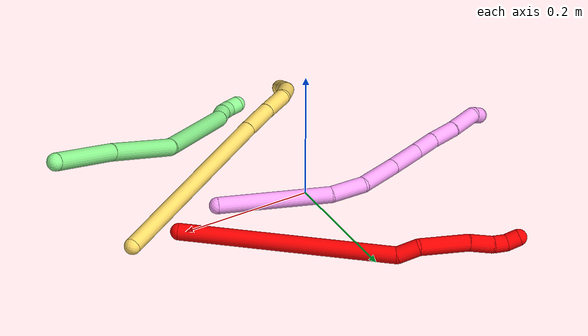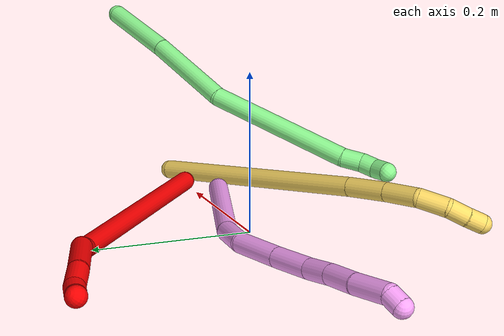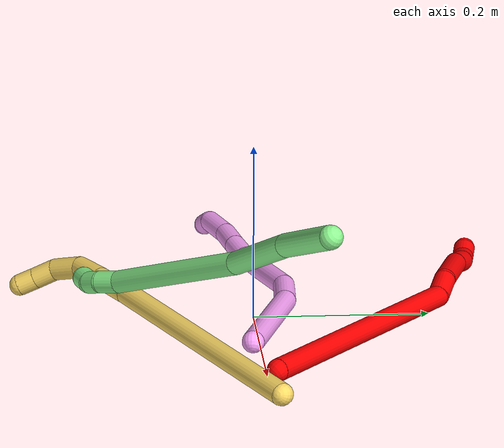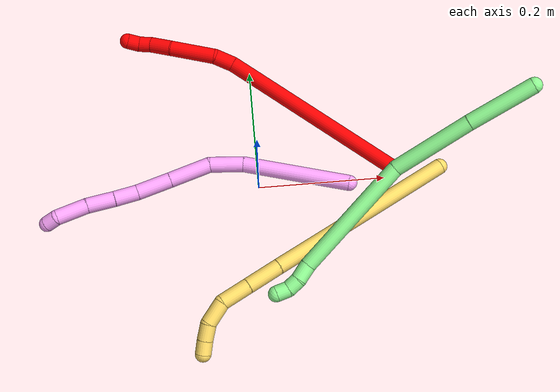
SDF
<sdf version="1.7">
 <world name="default">
  <model name="2">
   <static>0</static>
   <link name="2">
    <collision name="collision-cylinder-e_1_1_4">
     <pose>-0.067839 0.065614 0.127419 -0.47553 -0.442089 0.108812</pose>
     <geometry><cylinder><radius>0.0125</radius><length>0.317131</length></cylinder></geometry>
     <surface>
      <friction><ode><mu>1.16</mu><mu2>1.16</mu2><slip1>0</slip1><slip2>0</slip2></ode></friction>
      <contact><ode><kp>1e+06</kp><kd>1</kd><max_vel>0</max_vel><min_depth>0.001</min_depth></ode></contact>
     </surface>
    </collision>
    <visual name="visual-cylinder-e_1_1_4">
     <pose>-0.067839 0.065614 0.127419 -0.47553 -0.442089 0.108812</pose>
     <geometry><cylinder><radius>0.0125</radius><length>0.317131</length></cylinder></geometry>
     <material><ambient>1 0 0 1</ambient></material>
    </visual>
    <collision name="collision-cylinder-e_2_4_5">
     <pose>-0.145838 0.131113 0.267655 0.008903 -0.670307 -0.003101</pose>
     <geometry><cylinder><radius>0.0125</radius><length>0.032711</length></cylinder></geometry>
     <surface>
      <friction><ode><mu>1.16</mu><mu2>1.16</mu2><slip1>0</slip1><slip2>0</slip2></ode></friction>
      <contact><ode><kp>1e+06</kp><kd>1</kd><max_vel>0</max_vel><min_depth>0.001</min_depth></ode></contact>
     </surface>
    </collision>
    <visual name="visual-cylinder-e_2_4_5">
     <pose>-0.145838 0.131113 0.267655 0.008903 -0.670307 -0.003101</pose>
     <geometry><cylinder><radius>0.0125</radius><length>0.032711</length></cylinder></geometry>
     <material><ambient>1 0 0 1</ambient></material>
    </visual>
    <collision name="collision-cylinder-e_3_5_6">
     <pose>-0.18323 0.142301 0.302328 -0.477218 -0.836011 0.215253</pose>
     <geometry><cylinder><radius>0.0125</radius><length>0.073403</length></cylinder></geometry>
     <surface>
      <friction><ode><mu>1.16</mu><mu2>1.16</mu2><slip1>0</slip1><slip2>0</slip2></ode></friction>
      <contact><ode><kp>1e+06</kp><kd>1</kd><max_vel>0</max_vel><min_depth>0.001</min_depth></ode></contact>
     </surface>
    </collision>
    <visual name="visual-cylinder-e_3_5_6">
     <pose>-0.18323 0.142301 0.302328 -0.477218 -0.836011 0.215253</pose>
     <geometry><cylinder><radius>0.0125</radius><length>0.073403</length></cylinder></geometry>
     <material><ambient>1 0 0 1</ambient></material>
    </visual>
    <collision name="collision-cylinder-e_4_6_7">
     <pose>-0.222902 0.161967 0.333886 -0.711547 -0.770776 0.299232</pose>
     <geometry><cylinder><radius>0.0125</radius><length>0.035714</length></cylinder></geometry>
     <surface>
      <friction><ode><mu>1.16</mu><mu2>1.16</mu2><slip1>0</slip1><slip2>0</slip2></ode></friction>
      <contact><ode><kp>1e+06</kp><kd>1</kd><max_vel>0</max_vel><min_depth>0.001</min_depth></ode></contact>
     </surface>
    </collision>
    <visual name="visual-cylinder-e_4_6_7">
     <pose>-0.222902 0.161967 0.333886 -0.711547 -0.770776 0.299232</pose>
     <geometry><cylinder><radius>0.0125</radius><length>0.035714</length></cylinder></geometry>
     <material><ambient>1 0 0 1</ambient></material>
    </visual>
    <collision name="collision-cylinder-e_5_7_8">
     <pose>-0.243911 0.173399 0.348756 -0.535611 -0.959151 0.283498</pose>
     <geometry><cylinder><radius>0.0125</radius><length>0.020931</length></cylinder></geometry>
     <surface>
      <friction><ode><mu>1.16</mu><mu2>1.16</mu2><slip1>0</slip1><slip2>0</slip2></ode></friction>
      <contact><ode><kp>1e+06</kp><kd>1</kd><max_vel>0</max_vel><min_depth>0.001</min_depth></ode></contact>
     </surface>
    </collision>
    <visual name="visual-cylinder-e_5_7_8">
     <pose>-0.243911 0.173399 0.348756 -0.535611 -0.959151 0.283498</pose>
     <geometry><cylinder><radius>0.0125</radius><length>0.020931</length></cylinder></geometry>
     <material><ambient>1 0 0 1</ambient></material>
    </visual>
    <collision name="collision-cylinder-e_6_8_2">
     <pose>-0.259849 0.176351 0.360763 0.016842 -0.822651 -0.007347</pose>
     <geometry><cylinder><radius>0.0125</radius><length>0.020111</length></cylinder></geometry>
     <surface>
      <friction><ode><mu>1.16</mu><mu2>1.16</mu2><slip1>0</slip1><slip2>0</slip2></ode></friction>
      <contact><ode><kp>1e+06</kp><kd>1</kd><max_vel>0</max_vel><min_depth>0.001</min_depth></ode></contact>
     </surface>
    </collision>
    <visual name="visual-cylinder-e_6_8_2">
     <pose>-0.259849 0.176351 0.360763 0.016842 -0.822651 -0.007347</pose>
     <geometry><cylinder><radius>0.0125</radius><length>0.020111</length></cylinder></geometry>
     <material><ambient>1 0 0 1</ambient></material>
    </visual>
    <collision name="collision-sphere-2">
     <pose>-0.267219 0.176236 0.367603 0 -0 0</pose>
     <geometry><sphere><radius>0.0125</radius></sphere></geometry>
     <surface>
      <friction><ode><mu>1.16</mu><mu2>1.16</mu2><slip1>0</slip1><slip2>0</slip2></ode></friction>
      <contact><ode><kp>1e+06</kp><kd>1</kd><max_vel>0</max_vel><min_depth>0.001</min_depth></ode></contact>
     </surface>
    </collision>
    <visual name="visual-sphere-2">
     <pose>-0.267219 0.176236 0.367603 0 -0 0</pose>
     <geometry><sphere><radius>0.0125</radius></sphere></geometry>
     <material><ambient>1 0 0 1</ambient></material>
    </visual>
    <collision name="collision-sphere-4">
     <pose>-0.135678 0.131227 0.254839 0 -0 0</pose>
     <geometry><sphere><radius>0.0125</radius></sphere></geometry>
     <surface>
      <friction><ode><mu>1.16</mu><mu2>1.16</mu2><slip1>0</slip1><slip2>0</slip2></ode></friction>
      <contact><ode><kp>1e+06</kp><kd>1</kd><max_vel>0</max_vel><min_depth>0.001</min_depth></ode></contact>
     </surface>
    </collision>
    <visual name="visual-sphere-4">
     <pose>-0.135678 0.131227 0.254839 0 -0 0</pose>
     <geometry><sphere><radius>0.0125</radius></sphere></geometry>
     <material><ambient>1 0 0 1</ambient></material>
    </visual>
    <collision name="collision-sphere-1">
     <geometry><sphere><radius>0.0125</radius></sphere></geometry>
     <surface>
      <friction><ode><mu>1.16</mu><mu2>1.16</mu2><slip1>0</slip1><slip2>0</slip2></ode></friction>
      <contact><ode><kp>1e+06</kp><kd>1</kd><max_vel>0</max_vel><min_depth>0.001</min_depth></ode></contact>
     </surface>
    </collision>
    <visual name="visual-sphere-1">
     <geometry><sphere><radius>0.0125</radius></sphere></geometry>
     <material><ambient>1 0 0 1</ambient></material>
    </visual>
    <collision name="collision-sphere-8">
     <pose>-0.252479 0.176466 0.353924 0 -0 0</pose>
     <geometry><sphere><radius>0.0125</radius></sphere></geometry>
     <surface>
      <friction><ode><mu>1.16</mu><mu2>1.16</mu2><slip1>0</slip1><slip2>0</slip2></ode></friction>
      <contact><ode><kp>1e+06</kp><kd>1</kd><max_vel>0</max_vel><min_depth>0.001</min_depth></ode></contact>
     </surface>
    </collision>
    <visual name="visual-sphere-8">
     <pose>-0.252479 0.176466 0.353924 0 -0 0</pose>
     <geometry><sphere><radius>0.0125</radius></sphere></geometry>
     <material><ambient>1 0 0 1</ambient></material>
    </visual>
    <collision name="collision-sphere-5">
     <pose>-0.155999 0.130999 0.280471 0 -0 0</pose>
     <geometry><sphere><radius>0.0125</radius></sphere></geometry>
     <surface>
      <friction><ode><mu>1.16</mu><mu2>1.16</mu2><slip1>0</slip1><slip2>0</slip2></ode></friction>
      <contact><ode><kp>1e+06</kp><kd>1</kd><max_vel>0</max_vel><min_depth>0.001</min_depth></ode></contact>
     </surface>
    </collision>
    <visual name="visual-sphere-5">
     <pose>-0.155999 0.130999 0.280471 0 -0 0</pose>
     <geometry><sphere><radius>0.0125</radius></sphere></geometry>
     <material><ambient>1 0 0 1</ambient></material>
    </visual>
    <collision name="collision-sphere-6">
     <pose>-0.210462 0.153602 0.324185 0 -0 0</pose>
     <geometry><sphere><radius>0.0125</radius></sphere></geometry>
     <surface>
      <friction><ode><mu>1.16</mu><mu2>1.16</mu2><slip1>0</slip1><slip2>0</slip2></ode></friction>
      <contact><ode><kp>1e+06</kp><kd>1</kd><max_vel>0</max_vel><min_depth>0.001</min_depth></ode></contact>
     </surface>
    </collision>
    <visual name="visual-sphere-6">
     <pose>-0.210462 0.153602 0.324185 0 -0 0</pose>
     <geometry><sphere><radius>0.0125</radius></sphere></geometry>
     <material><ambient>1 0 0 1</ambient></material>
    </visual>
    <collision name="collision-sphere-7">
     <pose>-0.235343 0.170333 0.343588 0 -0 0</pose>
     <geometry><sphere><radius>0.0125</radius></sphere></geometry>
     <surface>
      <friction><ode><mu>1.16</mu><mu2>1.16</mu2><slip1>0</slip1><slip2>0</slip2></ode></friction>
      <contact><ode><kp>1e+06</kp><kd>1</kd><max_vel>0</max_vel><min_depth>0.001</min_depth></ode></contact>
     </surface>
    </collision>
    <visual name="visual-sphere-7">
     <pose>-0.235343 0.170333 0.343588 0 -0 0</pose>
     <geometry><sphere><radius>0.0125</radius></sphere></geometry>
     <material><ambient>1 0 0 1</ambient></material>
    </visual>
    <inertial>
     <pose>-0.116051 0.097005 0.19567 0 -0 0</pose>
     <mass>0.5</mass>
     <inertia>
      <ixx>0.002679</ixx>
      <ixy>0</ixy>
      <ixz>0</ixz>
      <iyy>0.002744</iyy>
      <iyz>0</iyz>
      <izz>8.7e-05</izz>
     </inertia>
    </inertial>
   </link>
   <pose>0.216793 0.010405 0.01269 -1.05056 -0.09591 0.426773</pose>
  </model>
  <model name="4">
   <static>0</static>
   <link name="4">
    <collision name="collision-cylinder-e_1_1_4">
     <pose>-0.061726 0.027592 0.052863 -0.481051 -0.802664 0.207424</pose>
     <geometry><cylinder><radius>0.0125</radius><length>0.17165</length></cylinder></geometry>
     <surface>
      <friction><ode><mu>1.16</mu><mu2>1.16</mu2><slip1>0</slip1><slip2>0</slip2></ode></friction>
      <contact><ode><kp>1e+06</kp><kd>1</kd><max_vel>0</max_vel><min_depth>0.001</min_depth></ode></contact>
     </surface>
    </collision>
    <visual name="visual-cylinder-e_1_1_4">
     <pose>-0.061726 0.027592 0.052863 -0.481051 -0.802664 0.207424</pose>
     <geometry><cylinder><radius>0.0125</radius><length>0.17165</length></cylinder></geometry>
     <material><ambient>1 0.65098 0.996078 1</ambient></material>
    </visual>
    <collision name="collision-cylinder-e_2_4_5">
     <pose>-0.143406 0.057467 0.12364 -0.126803 -0.835204 0.056323</pose>
     <geometry><cylinder><radius>0.0125</radius><length>0.053824</length></cylinder></geometry>
     <surface>
      <friction><ode><mu>1.16</mu><mu2>1.16</mu2><slip1>0</slip1><slip2>0</slip2></ode></friction>
      <contact><ode><kp>1e+06</kp><kd>1</kd><max_vel>0</max_vel><min_depth>0.001</min_depth></ode></contact>
     </surface>
    </collision>
    <visual name="visual-cylinder-e_2_4_5">
     <pose>-0.143406 0.057467 0.12364 -0.126803 -0.835204 0.056323</pose>
     <geometry><cylinder><radius>0.0125</radius><length>0.053824</length></cylinder></geometry>
     <material><ambient>1 0.65098 0.996078 1</ambient></material>
    </visual>
    <collision name="collision-cylinder-e_3_5_6">
     <pose>-0.18981 0.051045 0.160414 0.432436 -0.905061 -0.212774</pose>
     <geometry><cylinder><radius>0.0125</radius><length>0.067266</length></cylinder></geometry>
     <surface>
      <friction><ode><mu>1.16</mu><mu2>1.16</mu2><slip1>0</slip1><slip2>0</slip2></ode></friction>
      <contact><ode><kp>1e+06</kp><kd>1</kd><max_vel>0</max_vel><min_depth>0.001</min_depth></ode></contact>
     </surface>
    </collision>
    <visual name="visual-cylinder-e_3_5_6">
     <pose>-0.18981 0.051045 0.160414 0.432436 -0.905061 -0.212774</pose>
     <geometry><cylinder><radius>0.0125</radius><length>0.067266</length></cylinder></geometry>
     <material><ambient>1 0.65098 0.996078 1</ambient></material>
    </visual>
    <collision name="collision-cylinder-e_4_6_7">
     <pose>-0.237579 0.034996 0.195327 0.429062 -0.87917 -0.204217</pose>
     <geometry><cylinder><radius>0.0125</radius><length>0.055356</length></cylinder></geometry>
     <surface>
      <friction><ode><mu>1.16</mu><mu2>1.16</mu2><slip1>0</slip1><slip2>0</slip2></ode></friction>
      <contact><ode><kp>1e+06</kp><kd>1</kd><max_vel>0</max_vel><min_depth>0.001</min_depth></ode></contact>
     </surface>
    </collision>
    <visual name="visual-cylinder-e_4_6_7">
     <pose>-0.237579 0.034996 0.195327 0.429062 -0.87917 -0.204217</pose>
     <geometry><cylinder><radius>0.0125</radius><length>0.055356</length></cylinder></geometry>
     <material><ambient>1 0.65098 0.996078 1</ambient></material>
    </visual>
    <collision name="collision-cylinder-e_5_7_8">
     <pose>-0.272331 0.023445 0.223701 0.329082 -0.801068 -0.140381</pose>
     <geometry><cylinder><radius>0.0125</radius><length>0.037416</length></cylinder></geometry>
     <surface>
      <friction><ode><mu>1.16</mu><mu2>1.16</mu2><slip1>0</slip1><slip2>0</slip2></ode></friction>
      <contact><ode><kp>1e+06</kp><kd>1</kd><max_vel>0</max_vel><min_depth>0.001</min_depth></ode></contact>
     </surface>
    </collision>
    <visual name="visual-cylinder-e_5_7_8">
     <pose>-0.272331 0.023445 0.223701 0.329082 -0.801068 -0.140381</pose>
     <geometry><cylinder><radius>0.0125</radius><length>0.037416</length></cylinder></geometry>
     <material><ambient>1 0.65098 0.996078 1</ambient></material>
    </visual>
    <collision name="collision-cylinder-e_6_8_9">
     <pose>-0.30229 0.015657 0.250189 0.247506 -0.846764 -0.111991</pose>
     <geometry><cylinder><radius>0.0125</radius><length>0.044119</length></cylinder></geometry>
     <surface>
      <friction><ode><mu>1.16</mu><mu2>1.16</mu2><slip1>0</slip1><slip2>0</slip2></ode></friction>
      <contact><ode><kp>1e+06</kp><kd>1</kd><max_vel>0</max_vel><min_depth>0.001</min_depth></ode></contact>
     </surface>
    </collision>
    <visual name="visual-cylinder-e_6_8_9">
     <pose>-0.30229 0.015657 0.250189 0.247506 -0.846764 -0.111991</pose>
     <geometry><cylinder><radius>0.0125</radius><length>0.044119</length></cylinder></geometry>
     <material><ambient>1 0.65098 0.996078 1</ambient></material>
    </visual>
    <collision name="collision-cylinder-e_7_9_10">
     <pose>-0.337774 0.004796 0.279245 0.454852 -0.852363 -0.209374</pose>
     <geometry><cylinder><radius>0.0125</radius><length>0.050364</length></cylinder></geometry>
     <surface>
      <friction><ode><mu>1.16</mu><mu2>1.16</mu2><slip1>0</slip1><slip2>0</slip2></ode></friction>
      <contact><ode><kp>1e+06</kp><kd>1</kd><max_vel>0</max_vel><min_depth>0.001</min_depth></ode></contact>
     </surface>
    </collision>
    <visual name="visual-cylinder-e_7_9_10">
     <pose>-0.337774 0.004796 0.279245 0.454852 -0.852363 -0.209374</pose>
     <geometry><cylinder><radius>0.0125</radius><length>0.050364</length></cylinder></geometry>
     <material><ambient>1 0.65098 0.996078 1</ambient></material>
    </visual>
    <collision name="collision-cylinder-e_8_10_2">
     <pose>-0.366458 -0.004242 0.295681 0.848912 -1.33475 -0.684227</pose>
     <geometry><cylinder><radius>0.0125</radius><length>0.020007</length></cylinder></geometry>
     <surface>
      <friction><ode><mu>1.16</mu><mu2>1.16</mu2><slip1>0</slip1><slip2>0</slip2></ode></friction>
      <contact><ode><kp>1e+06</kp><kd>1</kd><max_vel>0</max_vel><min_depth>0.001</min_depth></ode></contact>
     </surface>
    </collision>
    <visual name="visual-cylinder-e_8_10_2">
     <pose>-0.366458 -0.004242 0.295681 0.848912 -1.33475 -0.684227</pose>
     <geometry><cylinder><radius>0.0125</radius><length>0.020007</length></cylinder></geometry>
     <material><ambient>1 0.65098 0.996078 1</ambient></material>
    </visual>
    <collision name="collision-sphere-2">
     <pose>-0.376184 -0.005998 0.297227 0 -0 0</pose>
     <geometry><sphere><radius>0.0125</radius></sphere></geometry>
     <surface>
      <friction><ode><mu>1.16</mu><mu2>1.16</mu2><slip1>0</slip1><slip2>0</slip2></ode></friction>
      <contact><ode><kp>1e+06</kp><kd>1</kd><max_vel>0</max_vel><min_depth>0.001</min_depth></ode></contact>
     </surface>
    </collision>
    <visual name="visual-sphere-2">
     <pose>-0.376184 -0.005998 0.297227 0 -0 0</pose>
     <geometry><sphere><radius>0.0125</radius></sphere></geometry>
     <material><ambient>1 0.65098 0.996078 1</ambient></material>
    </visual>
    <collision name="collision-sphere-10">
     <pose>-0.356732 -0.002486 0.294135 0 -0 0</pose>
     <geometry><sphere><radius>0.0125</radius></sphere></geometry>
     <surface>
      <friction><ode><mu>1.16</mu><mu2>1.16</mu2><slip1>0</slip1><slip2>0</slip2></ode></friction>
      <contact><ode><kp>1e+06</kp><kd>1</kd><max_vel>0</max_vel><min_depth>0.001</min_depth></ode></contact>
     </surface>
    </collision>
    <visual name="visual-sphere-10">
     <pose>-0.356732 -0.002486 0.294135 0 -0 0</pose>
     <geometry><sphere><radius>0.0125</radius></sphere></geometry>
     <material><ambient>1 0.65098 0.996078 1</ambient></material>
    </visual>
    <collision name="collision-sphere-9">
     <pose>-0.318816 0.012077 0.264356 0 -0 0</pose>
     <geometry><sphere><radius>0.0125</radius></sphere></geometry>
     <surface>
      <friction><ode><mu>1.16</mu><mu2>1.16</mu2><slip1>0</slip1><slip2>0</slip2></ode></friction>
      <contact><ode><kp>1e+06</kp><kd>1</kd><max_vel>0</max_vel><min_depth>0.001</min_depth></ode></contact>
     </surface>
    </collision>
    <visual name="visual-sphere-9">
     <pose>-0.318816 0.012077 0.264356 0 -0 0</pose>
     <geometry><sphere><radius>0.0125</radius></sphere></geometry>
     <material><ambient>1 0.65098 0.996078 1</ambient></material>
    </visual>
    <collision name="collision-sphere-4">
     <pose>-0.123452 0.055184 0.105726 0 -0 0</pose>
     <geometry><sphere><radius>0.0125</radius></sphere></geometry>
     <surface>
      <friction><ode><mu>1.16</mu><mu2>1.16</mu2><slip1>0</slip1><slip2>0</slip2></ode></friction>
      <contact><ode><kp>1e+06</kp><kd>1</kd><max_vel>0</max_vel><min_depth>0.001</min_depth></ode></contact>
     </surface>
    </collision>
    <visual name="visual-sphere-4">
     <pose>-0.123452 0.055184 0.105726 0 -0 0</pose>
     <geometry><sphere><radius>0.0125</radius></sphere></geometry>
     <material><ambient>1 0.65098 0.996078 1</ambient></material>
    </visual>
    <collision name="collision-sphere-1">
     <geometry><sphere><radius>0.0125</radius></sphere></geometry>
     <surface>
      <friction><ode><mu>1.16</mu><mu2>1.16</mu2><slip1>0</slip1><slip2>0</slip2></ode></friction>
      <contact><ode><kp>1e+06</kp><kd>1</kd><max_vel>0</max_vel><min_depth>0.001</min_depth></ode></contact>
     </surface>
    </collision>
    <visual name="visual-sphere-1">
     <geometry><sphere><radius>0.0125</radius></sphere></geometry>
     <material><ambient>1 0.65098 0.996078 1</ambient></material>
    </visual>
    <collision name="collision-sphere-8">
     <pose>-0.285765 0.019237 0.236022 0 -0 0</pose>
     <geometry><sphere><radius>0.0125</radius></sphere></geometry>
     <surface>
      <friction><ode><mu>1.16</mu><mu2>1.16</mu2><slip1>0</slip1><slip2>0</slip2></ode></friction>
      <contact><ode><kp>1e+06</kp><kd>1</kd><max_vel>0</max_vel><min_depth>0.001</min_depth></ode></contact>
     </surface>
    </collision>
    <visual name="visual-sphere-8">
     <pose>-0.285765 0.019237 0.236022 0 -0 0</pose>
     <geometry><sphere><radius>0.0125</radius></sphere></geometry>
     <material><ambient>1 0.65098 0.996078 1</ambient></material>
    </visual>
    <collision name="collision-sphere-5">
     <pose>-0.163359 0.059751 0.141553 0 -0 0</pose>
     <geometry><sphere><radius>0.0125</radius></sphere></geometry>
     <surface>
      <friction><ode><mu>1.16</mu><mu2>1.16</mu2><slip1>0</slip1><slip2>0</slip2></ode></friction>
      <contact><ode><kp>1e+06</kp><kd>1</kd><max_vel>0</max_vel><min_depth>0.001</min_depth></ode></contact>
     </surface>
    </collision>
    <visual name="visual-sphere-5">
     <pose>-0.163359 0.059751 0.141553 0 -0 0</pose>
     <geometry><sphere><radius>0.0125</radius></sphere></geometry>
     <material><ambient>1 0.65098 0.996078 1</ambient></material>
    </visual>
    <collision name="collision-sphere-6">
     <pose>-0.216261 0.04234 0.179275 0 -0 0</pose>
     <geometry><sphere><radius>0.0125</radius></sphere></geometry>
     <surface>
      <friction><ode><mu>1.16</mu><mu2>1.16</mu2><slip1>0</slip1><slip2>0</slip2></ode></friction>
      <contact><ode><kp>1e+06</kp><kd>1</kd><max_vel>0</max_vel><min_depth>0.001</min_depth></ode></contact>
     </surface>
    </collision>
    <visual name="visual-sphere-6">
     <pose>-0.216261 0.04234 0.179275 0 -0 0</pose>
     <geometry><sphere><radius>0.0125</radius></sphere></geometry>
     <material><ambient>1 0.65098 0.996078 1</ambient></material>
    </visual>
    <collision name="collision-sphere-7">
     <pose>-0.258896 0.027652 0.21138 0 -0 0</pose>
     <geometry><sphere><radius>0.0125</radius></sphere></geometry>
     <surface>
      <friction><ode><mu>1.16</mu><mu2>1.16</mu2><slip1>0</slip1><slip2>0</slip2></ode></friction>
      <contact><ode><kp>1e+06</kp><kd>1</kd><max_vel>0</max_vel><min_depth>0.001</min_depth></ode></contact>
     </surface>
    </collision>
    <visual name="visual-sphere-7">
     <pose>-0.258896 0.027652 0.21138 0 -0 0</pose>
     <geometry><sphere><radius>0.0125</radius></sphere></geometry>
     <material><ambient>1 0.65098 0.996078 1</ambient></material>
    </visual>
    <inertial>
     <pose>-0.184204 0.029849 0.153438 0 -0 0</pose>
     <mass>0.5</mass>
     <inertia>
      <ixx>0.00037</ixx>
      <ixy>0</ixy>
      <ixz>0</ixz>
      <iyy>0.000538</iyy>
      <iyz>0</iyz>
      <izz>0.000278</izz>
     </inertia>
    </inertial>
   </link>
   <pose>0.142485 -0.010865 0.019742 -0.252359 -0.672474 0.196102</pose>
  </model>
  <model name="5">
   <static>0</static>
   <link name="5">
    <collision name="collision-cylinder-e_1_1_4">
     <pose>-0.11113 -0.077955 -0.076029 2.34368 -0.795573 -1.56753</pose>
     <geometry><cylinder><radius>0.0125</radius><length>0.311174</length></cylinder></geometry>
     <surface>
      <friction><ode><mu>1.16</mu><mu2>1.16</mu2><slip1>0</slip1><slip2>0</slip2></ode></friction>
      <contact><ode><kp>1e+06</kp><kd>1</kd><max_vel>0</max_vel><min_depth>0.001</min_depth></ode></contact>
     </surface>
    </collision>
    <visual name="visual-cylinder-e_1_1_4">
     <pose>-0.11113 -0.077955 -0.076029 2.34368 -0.795573 -1.56753</pose>
     <geometry><cylinder><radius>0.0125</radius><length>0.311174</length></cylinder></geometry>
     <material><ambient>1 0.858824 0.4 1</ambient></material>
    </visual>
    <collision name="collision-cylinder-e_2_4_5">
     <pose>-0.241547 -0.170577 -0.166021 2.33164 -0.761002 -1.50161</pose>
     <geometry><cylinder><radius>0.0125</radius><length>0.05593</length></cylinder></geometry>
     <surface>
      <friction><ode><mu>1.16</mu><mu2>1.16</mu2><slip1>0</slip1><slip2>0</slip2></ode></friction>
      <contact><ode><kp>1e+06</kp><kd>1</kd><max_vel>0</max_vel><min_depth>0.001</min_depth></ode></contact>
     </surface>
    </collision>
    <visual name="visual-cylinder-e_2_4_5">
     <pose>-0.241547 -0.170577 -0.166021 2.33164 -0.761002 -1.50161</pose>
     <geometry><cylinder><radius>0.0125</radius><length>0.05593</length></cylinder></geometry>
     <material><ambient>1 0.858824 0.4 1</ambient></material>
    </visual>
    <collision name="collision-cylinder-e_3_5_6">
     <pose>-0.276335 -0.197966 -0.192113 2.33231 -0.722739 -1.44616</pose>
     <geometry><cylinder><radius>0.0125</radius><length>0.046872</length></cylinder></geometry>
     <surface>
      <friction><ode><mu>1.16</mu><mu2>1.16</mu2><slip1>0</slip1><slip2>0</slip2></ode></friction>
      <contact><ode><kp>1e+06</kp><kd>1</kd><max_vel>0</max_vel><min_depth>0.001</min_depth></ode></contact>
     </surface>
    </collision>
    <visual name="visual-cylinder-e_3_5_6">
     <pose>-0.276335 -0.197966 -0.192113 2.33231 -0.722739 -1.44616</pose>
     <geometry><cylinder><radius>0.0125</radius><length>0.046872</length></cylinder></geometry>
     <material><ambient>1 0.858824 0.4 1</ambient></material>
    </visual>
    <collision name="collision-cylinder-e_4_6_7">
     <pose>-0.300676 -0.226754 -0.208713 1.84226 -0.487445 -0.632679</pose>
     <geometry><cylinder><radius>0.0125</radius><length>0.037748</length></cylinder></geometry>
     <surface>
      <friction><ode><mu>1.16</mu><mu2>1.16</mu2><slip1>0</slip1><slip2>0</slip2></ode></friction>
      <contact><ode><kp>1e+06</kp><kd>1</kd><max_vel>0</max_vel><min_depth>0.001</min_depth></ode></contact>
     </surface>
    </collision>
    <visual name="visual-cylinder-e_4_6_7">
     <pose>-0.300676 -0.226754 -0.208713 1.84226 -0.487445 -0.632679</pose>
     <geometry><cylinder><radius>0.0125</radius><length>0.037748</length></cylinder></geometry>
     <material><ambient>1 0.858824 0.4 1</ambient></material>
    </visual>
    <collision name="collision-cylinder-e_5_7_8">
     <pose>-0.312089 -0.255776 -0.212788 1.54023 -0.19587 -0.190009</pose>
     <geometry><cylinder><radius>0.0125</radius><length>0.026433</length></cylinder></geometry>
     <surface>
      <friction><ode><mu>1.16</mu><mu2>1.16</mu2><slip1>0</slip1><slip2>0</slip2></ode></friction>
      <contact><ode><kp>1e+06</kp><kd>1</kd><max_vel>0</max_vel><min_depth>0.001</min_depth></ode></contact>
     </surface>
    </collision>
    <visual name="visual-cylinder-e_5_7_8">
     <pose>-0.312089 -0.255776 -0.212788 1.54023 -0.19587 -0.190009</pose>
     <geometry><cylinder><radius>0.0125</radius><length>0.026433</length></cylinder></geometry>
     <material><ambient>1 0.858824 0.4 1</ambient></material>
    </visual>
    <collision name="collision-cylinder-e_6_8_2">
     <pose>-0.316797 -0.279375 -0.211178 1.45721 -0.196856 -0.175792</pose>
     <geometry><cylinder><radius>0.0125</radius><length>0.021842</length></cylinder></geometry>
     <surface>
      <friction><ode><mu>1.16</mu><mu2>1.16</mu2><slip1>0</slip1><slip2>0</slip2></ode></friction>
      <contact><ode><kp>1e+06</kp><kd>1</kd><max_vel>0</max_vel><min_depth>0.001</min_depth></ode></contact>
     </surface>
    </collision>
    <visual name="visual-cylinder-e_6_8_2">
     <pose>-0.316797 -0.279375 -0.211178 1.45721 -0.196856 -0.175792</pose>
     <geometry><cylinder><radius>0.0125</radius><length>0.021842</length></cylinder></geometry>
     <material><ambient>1 0.858824 0.4 1</ambient></material>
    </visual>
    <collision name="collision-sphere-2">
     <pose>-0.318933 -0.290016 -0.209964 0 -0 0</pose>
     <geometry><sphere><radius>0.0125</radius></sphere></geometry>
     <surface>
      <friction><ode><mu>1.16</mu><mu2>1.16</mu2><slip1>0</slip1><slip2>0</slip2></ode></friction>
      <contact><ode><kp>1e+06</kp><kd>1</kd><max_vel>0</max_vel><min_depth>0.001</min_depth></ode></contact>
     </surface>
    </collision>
    <visual name="visual-sphere-2">
     <pose>-0.318933 -0.290016 -0.209964 0 -0 0</pose>
     <geometry><sphere><radius>0.0125</radius></sphere></geometry>
     <material><ambient>1 0.858824 0.4 1</ambient></material>
    </visual>
    <collision name="collision-sphere-4">
     <pose>-0.222261 -0.15591 -0.152057 0 -0 0</pose>
     <geometry><sphere><radius>0.0125</radius></sphere></geometry>
     <surface>
      <friction><ode><mu>1.16</mu><mu2>1.16</mu2><slip1>0</slip1><slip2>0</slip2></ode></friction>
      <contact><ode><kp>1e+06</kp><kd>1</kd><max_vel>0</max_vel><min_depth>0.001</min_depth></ode></contact>
     </surface>
    </collision>
    <visual name="visual-sphere-4">
     <pose>-0.222261 -0.15591 -0.152057 0 -0 0</pose>
     <geometry><sphere><radius>0.0125</radius></sphere></geometry>
     <material><ambient>1 0.858824 0.4 1</ambient></material>
    </visual>
    <collision name="collision-sphere-1">
     <geometry><sphere><radius>0.0125</radius></sphere></geometry>
     <surface>
      <friction><ode><mu>1.16</mu><mu2>1.16</mu2><slip1>0</slip1><slip2>0</slip2></ode></friction>
      <contact><ode><kp>1e+06</kp><kd>1</kd><max_vel>0</max_vel><min_depth>0.001</min_depth></ode></contact>
     </surface>
    </collision>
    <visual name="visual-sphere-1">
     <geometry><sphere><radius>0.0125</radius></sphere></geometry>
     <material><ambient>1 0.858824 0.4 1</ambient></material>
    </visual>
    <collision name="collision-sphere-8">
     <pose>-0.314661 -0.268734 -0.212392 0 -0 0</pose>
     <geometry><sphere><radius>0.0125</radius></sphere></geometry>
     <surface>
      <friction><ode><mu>1.16</mu><mu2>1.16</mu2><slip1>0</slip1><slip2>0</slip2></ode></friction>
      <contact><ode><kp>1e+06</kp><kd>1</kd><max_vel>0</max_vel><min_depth>0.001</min_depth></ode></contact>
     </surface>
    </collision>
    <visual name="visual-sphere-8">
     <pose>-0.314661 -0.268734 -0.212392 0 -0 0</pose>
     <geometry><sphere><radius>0.0125</radius></sphere></geometry>
     <material><ambient>1 0.858824 0.4 1</ambient></material>
    </visual>
    <collision name="collision-sphere-5">
     <pose>-0.260833 -0.185244 -0.179984 0 -0 0</pose>
     <geometry><sphere><radius>0.0125</radius></sphere></geometry>
     <surface>
      <friction><ode><mu>1.16</mu><mu2>1.16</mu2><slip1>0</slip1><slip2>0</slip2></ode></friction>
      <contact><ode><kp>1e+06</kp><kd>1</kd><max_vel>0</max_vel><min_depth>0.001</min_depth></ode></contact>
     </surface>
    </collision>
    <visual name="visual-sphere-5">
     <pose>-0.260833 -0.185244 -0.179984 0 -0 0</pose>
     <geometry><sphere><radius>0.0125</radius></sphere></geometry>
     <material><ambient>1 0.858824 0.4 1</ambient></material>
    </visual>
    <collision name="collision-sphere-6">
     <pose>-0.291836 -0.210688 -0.204241 0 -0 0</pose>
     <geometry><sphere><radius>0.0125</radius></sphere></geometry>
     <surface>
      <friction><ode><mu>1.16</mu><mu2>1.16</mu2><slip1>0</slip1><slip2>0</slip2></ode></friction>
      <contact><ode><kp>1e+06</kp><kd>1</kd><max_vel>0</max_vel><min_depth>0.001</min_depth></ode></contact>
     </surface>
    </collision>
    <visual name="visual-sphere-6">
     <pose>-0.291836 -0.210688 -0.204241 0 -0 0</pose>
     <geometry><sphere><radius>0.0125</radius></sphere></geometry>
     <material><ambient>1 0.858824 0.4 1</ambient></material>
    </visual>
    <collision name="collision-sphere-7">
     <pose>-0.309516 -0.242819 -0.213184 0 -0 0</pose>
     <geometry><sphere><radius>0.0125</radius></sphere></geometry>
     <surface>
      <friction><ode><mu>1.16</mu><mu2>1.16</mu2><slip1>0</slip1><slip2>0</slip2></ode></friction>
      <contact><ode><kp>1e+06</kp><kd>1</kd><max_vel>0</max_vel><min_depth>0.001</min_depth></ode></contact>
     </surface>
    </collision>
    <visual name="visual-sphere-7">
     <pose>-0.309516 -0.242819 -0.213184 0 -0 0</pose>
     <geometry><sphere><radius>0.0125</radius></sphere></geometry>
     <material><ambient>1 0.858824 0.4 1</ambient></material>
    </visual>
    <inertial>
     <pose>-0.175124 -0.129 -0.120128 0 -0 0</pose>
     <mass>0.5</mass>
     <inertia>
      <ixx>-0.001799</ixx>
      <ixy>0</ixy>
      <ixz>0</ixz>
      <iyy>-0.000516</iyy>
      <iyz>0</iyz>
      <izz>0.003096</izz>
     </inertia>
    </inertial>
   </link>
   <pose>0.289235 0.007765 0.011494 1.17318 0.829949 0.774024</pose>
  </model>
  <model name="13">
   <static>0</static>
   <link name="13">
    <collision name="collision-cylinder-e_1_1_4">
     <pose>-0.025078 -0.001867 -0.047744 3.1025 -0.483344 -2.98331</pose>
     <geometry><cylinder><radius>0.0125</radius><length>0.107923</length></cylinder></geometry>
     <surface>
      <friction><ode><mu>1.16</mu><mu2>1.16</mu2><slip1>0</slip1><slip2>0</slip2></ode></friction>
      <contact><ode><kp>1e+06</kp><kd>1</kd><max_vel>0</max_vel><min_depth>0.001</min_depth></ode></contact>
     </surface>
    </collision>
    <visual name="visual-cylinder-e_1_1_4">
     <pose>-0.025078 -0.001867 -0.047744 3.1025 -0.483344 -2.98331</pose>
     <geometry><cylinder><radius>0.0125</radius><length>0.107923</length></cylinder></geometry>
     <material><ambient>0.564706 0.984314 0.572549 1</ambient></material>
    </visual>
    <collision name="collision-cylinder-e_2_4_5">
     <pose>-0.076852 -0.003083 -0.154269 -3.1305 -0.426274 3.09034</pose>
     <geometry><cylinder><radius>0.0125</radius><length>0.129126</length></cylinder></geometry>
     <surface>
      <friction><ode><mu>1.16</mu><mu2>1.16</mu2><slip1>0</slip1><slip2>0</slip2></ode></friction>
      <contact><ode><kp>1e+06</kp><kd>1</kd><max_vel>0</max_vel><min_depth>0.001</min_depth></ode></contact>
     </surface>
    </collision>
    <visual name="visual-cylinder-e_2_4_5">
     <pose>-0.076852 -0.003083 -0.154269 -3.1305 -0.426274 3.09034</pose>
     <geometry><cylinder><radius>0.0125</radius><length>0.129126</length></cylinder></geometry>
     <material><ambient>0.564706 0.984314 0.572549 1</ambient></material>
    </visual>
    <collision name="collision-cylinder-e_3_5_6">
     <pose>-0.125058 -0.026299 -0.305654 2.88933 -0.221249 -1.43877</pose>
     <geometry><cylinder><radius>0.0125</radius><length>0.196039</length></cylinder></geometry>
     <surface>
      <friction><ode><mu>1.16</mu><mu2>1.16</mu2><slip1>0</slip1><slip2>0</slip2></ode></friction>
      <contact><ode><kp>1e+06</kp><kd>1</kd><max_vel>0</max_vel><min_depth>0.001</min_depth></ode></contact>
     </surface>
    </collision>
    <visual name="visual-cylinder-e_3_5_6">
     <pose>-0.125058 -0.026299 -0.305654 2.88933 -0.221249 -1.43877</pose>
     <geometry><cylinder><radius>0.0125</radius><length>0.196039</length></cylinder></geometry>
     <material><ambient>0.564706 0.984314 0.572549 1</ambient></material>
    </visual>
    <collision name="collision-cylinder-e_4_6_7">
     <pose>-0.148198 -0.055978 -0.410085 2.68498 -0.123056 -0.518336</pose>
     <geometry><cylinder><radius>0.0125</radius><length>0.026555</length></cylinder></geometry>
     <surface>
      <friction><ode><mu>1.16</mu><mu2>1.16</mu2><slip1>0</slip1><slip2>0</slip2></ode></friction>
      <contact><ode><kp>1e+06</kp><kd>1</kd><max_vel>0</max_vel><min_depth>0.001</min_depth></ode></contact>
     </surface>
    </collision>
    <visual name="visual-cylinder-e_4_6_7">
     <pose>-0.148198 -0.055978 -0.410085 2.68498 -0.123056 -0.518336</pose>
     <geometry><cylinder><radius>0.0125</radius><length>0.026555</length></cylinder></geometry>
     <material><ambient>0.564706 0.984314 0.572549 1</ambient></material>
    </visual>
    <collision name="collision-cylinder-e_5_7_8">
     <pose>-0.152945 -0.064422 -0.43121 2.86552 -0.312011 -1.69465</pose>
     <geometry><cylinder><radius>0.0125</radius><length>0.020307</length></cylinder></geometry>
     <surface>
      <friction><ode><mu>1.16</mu><mu2>1.16</mu2><slip1>0</slip1><slip2>0</slip2></ode></friction>
      <contact><ode><kp>1e+06</kp><kd>1</kd><max_vel>0</max_vel><min_depth>0.001</min_depth></ode></contact>
     </surface>
    </collision>
    <visual name="visual-cylinder-e_5_7_8">
     <pose>-0.152945 -0.064422 -0.43121 2.86552 -0.312011 -1.69465</pose>
     <geometry><cylinder><radius>0.0125</radius><length>0.020307</length></cylinder></geometry>
     <material><ambient>0.564706 0.984314 0.572549 1</ambient></material>
    </visual>
    <collision name="collision-cylinder-e_6_8_2">
     <pose>-0.162669 -0.069359 -0.447685 2.8311 -0.719708 -2.35318</pose>
     <geometry><cylinder><radius>0.0125</radius><length>0.020049</length></cylinder></geometry>
     <surface>
      <friction><ode><mu>1.16</mu><mu2>1.16</mu2><slip1>0</slip1><slip2>0</slip2></ode></friction>
      <contact><ode><kp>1e+06</kp><kd>1</kd><max_vel>0</max_vel><min_depth>0.001</min_depth></ode></contact>
     </surface>
    </collision>
    <visual name="visual-cylinder-e_6_8_2">
     <pose>-0.162669 -0.069359 -0.447685 2.8311 -0.719708 -2.35318</pose>
     <geometry><cylinder><radius>0.0125</radius><length>0.020049</length></cylinder></geometry>
     <material><ambient>0.564706 0.984314 0.572549 1</ambient></material>
    </visual>
    <collision name="collision-sphere-2">
     <pose>-0.169277 -0.071662 -0.454863 0 -0 0</pose>
     <geometry><sphere><radius>0.0125</radius></sphere></geometry>
     <surface>
      <friction><ode><mu>1.16</mu><mu2>1.16</mu2><slip1>0</slip1><slip2>0</slip2></ode></friction>
      <contact><ode><kp>1e+06</kp><kd>1</kd><max_vel>0</max_vel><min_depth>0.001</min_depth></ode></contact>
     </surface>
    </collision>
    <visual name="visual-sphere-2">
     <pose>-0.169277 -0.071662 -0.454863 0 -0 0</pose>
     <geometry><sphere><radius>0.0125</radius></sphere></geometry>
     <material><ambient>0.564706 0.984314 0.572549 1</ambient></material>
    </visual>
    <collision name="collision-sphere-4">
     <pose>-0.050157 -0.003735 -0.095487 0 -0 0</pose>
     <geometry><sphere><radius>0.0125</radius></sphere></geometry>
     <surface>
      <friction><ode><mu>1.16</mu><mu2>1.16</mu2><slip1>0</slip1><slip2>0</slip2></ode></friction>
      <contact><ode><kp>1e+06</kp><kd>1</kd><max_vel>0</max_vel><min_depth>0.001</min_depth></ode></contact>
     </surface>
    </collision>
    <visual name="visual-sphere-4">
     <pose>-0.050157 -0.003735 -0.095487 0 -0 0</pose>
     <geometry><sphere><radius>0.0125</radius></sphere></geometry>
     <material><ambient>0.564706 0.984314 0.572549 1</ambient></material>
    </visual>
    <collision name="collision-sphere-1">
     <geometry><sphere><radius>0.0125</radius></sphere></geometry>
     <surface>
      <friction><ode><mu>1.16</mu><mu2>1.16</mu2><slip1>0</slip1><slip2>0</slip2></ode></friction>
      <contact><ode><kp>1e+06</kp><kd>1</kd><max_vel>0</max_vel><min_depth>0.001</min_depth></ode></contact>
     </surface>
    </collision>
    <visual name="visual-sphere-1">
     <geometry><sphere><radius>0.0125</radius></sphere></geometry>
     <material><ambient>0.564706 0.984314 0.572549 1</ambient></material>
    </visual>
    <collision name="collision-sphere-8">
     <pose>-0.156062 -0.067056 -0.440507 0 -0 0</pose>
     <geometry><sphere><radius>0.0125</radius></sphere></geometry>
     <surface>
      <friction><ode><mu>1.16</mu><mu2>1.16</mu2><slip1>0</slip1><slip2>0</slip2></ode></friction>
      <contact><ode><kp>1e+06</kp><kd>1</kd><max_vel>0</max_vel><min_depth>0.001</min_depth></ode></contact>
     </surface>
    </collision>
    <visual name="visual-sphere-8">
     <pose>-0.156062 -0.067056 -0.440507 0 -0 0</pose>
     <geometry><sphere><radius>0.0125</radius></sphere></geometry>
     <material><ambient>0.564706 0.984314 0.572549 1</ambient></material>
    </visual>
    <collision name="collision-sphere-5">
     <pose>-0.103548 -0.00243 -0.213051 0 -0 0</pose>
     <geometry><sphere><radius>0.0125</radius></sphere></geometry>
     <surface>
      <friction><ode><mu>1.16</mu><mu2>1.16</mu2><slip1>0</slip1><slip2>0</slip2></ode></friction>
      <contact><ode><kp>1e+06</kp><kd>1</kd><max_vel>0</max_vel><min_depth>0.001</min_depth></ode></contact>
     </surface>
    </collision>
    <visual name="visual-sphere-5">
     <pose>-0.103548 -0.00243 -0.213051 0 -0 0</pose>
     <geometry><sphere><radius>0.0125</radius></sphere></geometry>
     <material><ambient>0.564706 0.984314 0.572549 1</ambient></material>
    </visual>
    <collision name="collision-sphere-6">
     <pose>-0.146568 -0.050168 -0.398258 0 -0 0</pose>
     <geometry><sphere><radius>0.0125</radius></sphere></geometry>
     <surface>
      <friction><ode><mu>1.16</mu><mu2>1.16</mu2><slip1>0</slip1><slip2>0</slip2></ode></friction>
      <contact><ode><kp>1e+06</kp><kd>1</kd><max_vel>0</max_vel><min_depth>0.001</min_depth></ode></contact>
     </surface>
    </collision>
    <visual name="visual-sphere-6">
     <pose>-0.146568 -0.050168 -0.398258 0 -0 0</pose>
     <geometry><sphere><radius>0.0125</radius></sphere></geometry>
     <material><ambient>0.564706 0.984314 0.572549 1</ambient></material>
    </visual>
    <collision name="collision-sphere-7">
     <pose>-0.149828 -0.061788 -0.421912 0 -0 0</pose>
     <geometry><sphere><radius>0.0125</radius></sphere></geometry>
     <surface>
      <friction><ode><mu>1.16</mu><mu2>1.16</mu2><slip1>0</slip1><slip2>0</slip2></ode></friction>
      <contact><ode><kp>1e+06</kp><kd>1</kd><max_vel>0</max_vel><min_depth>0.001</min_depth></ode></contact>
     </surface>
    </collision>
    <visual name="visual-sphere-7">
     <pose>-0.149828 -0.061788 -0.421912 0 -0 0</pose>
     <geometry><sphere><radius>0.0125</radius></sphere></geometry>
     <material><ambient>0.564706 0.984314 0.572549 1</ambient></material>
    </visual>
    <inertial>
     <pose>-0.094898 -0.019881 -0.227231 0 -0 0</pose>
     <mass>0.5</mass>
     <inertia>
      <ixx>-0.000818</ixx>
      <ixy>0</ixy>
      <ixz>0</ixz>
      <iyy>-0.000385</iyy>
      <iyz>0</iyz>
      <izz>0.000391</izz>
     </inertia>
    </inertial>
   </link>
   <pose>0.409781 0.045148 0.217106 -0.855523 0.389515 -0.465151</pose>
  </model>
 </world>
</sdf>
